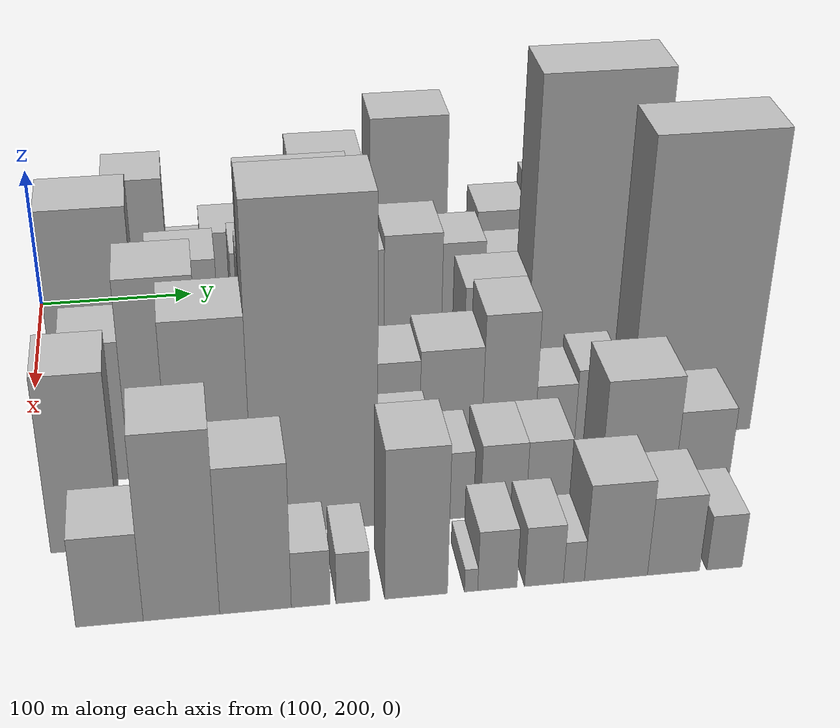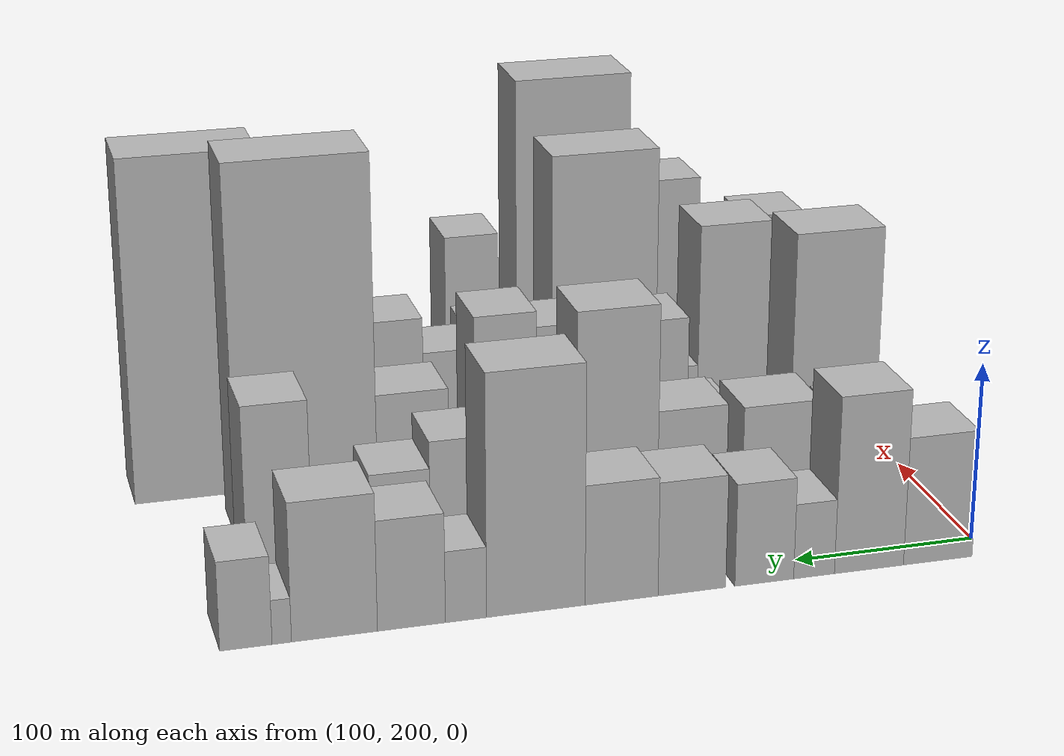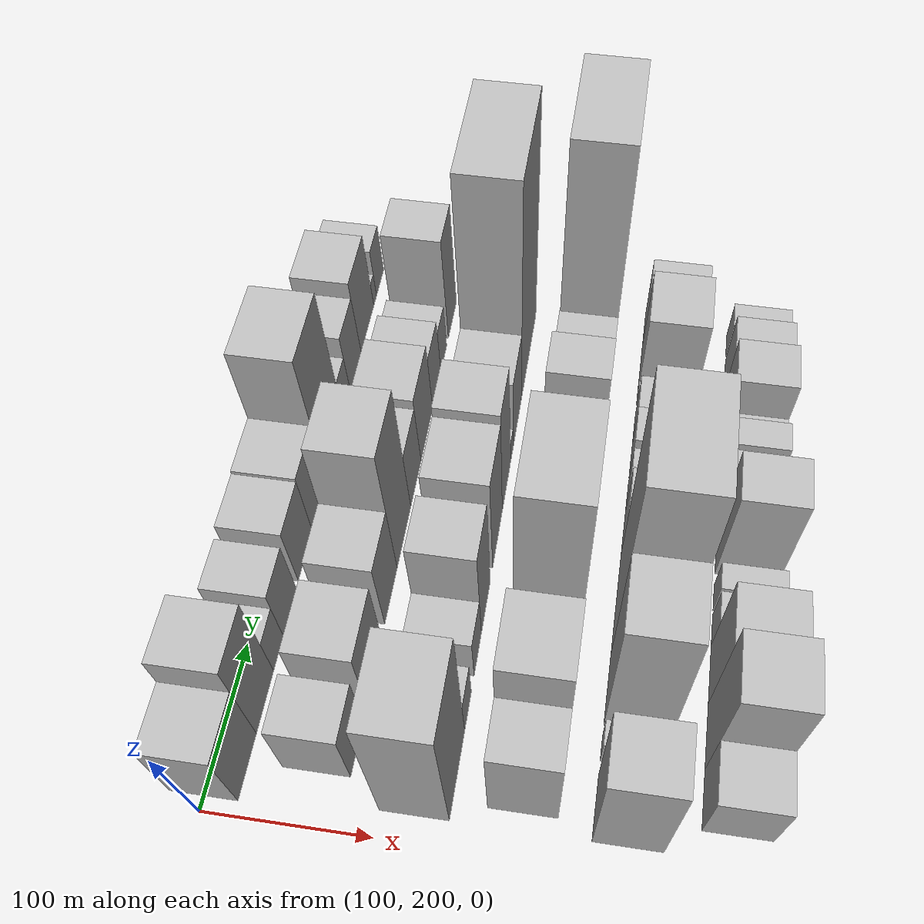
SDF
<sdf version="1.6">
 <world name="default">
  <model name="building_32">
   <static>1</static>
   <pose>100.0000 228.1606 0 0.000000 0.000000 0.000000</pose>
   <link name="link">
    <pose>0 0 36.00 0 0 0</pose>
    <collision name="collision"><geometry><box><size>40.0000 38.7418 72.0000</size></box></geometry></collision>
    <visual name="visual">
     <cast_shadows>0</cast_shadows>
     <geometry><box><size>40.0000 38.7418 72.0000</size></box></geometry>
     <material>
      <script>
       <uri>model://HANNAS_wall/materials/scripts</uri>
       <uri>model://HANNAS_wall/materials/textures</uri>
       <name>vrc/HANNAS_wall</name>
      </script>
     </material>
    </visual>
   </link>
  </model>
  <model name="building_33">
   <static>1</static>
   <pose>100.0000 266.7528 0 0.000000 0.000000 0.000000</pose>
   <link name="link">
    <pose>0 0 49.50 0 0 0</pose>
    <collision name="collision"><geometry><box><size>40.0000 38.4427 99.0000</size></box></geometry></collision>
    <visual name="visual">
     <cast_shadows>0</cast_shadows>
     <geometry><box><size>40.0000 38.4427 99.0000</size></box></geometry>
     <material>
      <script>
       <uri>model://HANNAS_wall/materials/scripts</uri>
       <uri>model://HANNAS_wall/materials/textures</uri>
       <name>vrc/HANNAS_wall</name>
      </script>
     </material>
    </visual>
   </link>
  </model>
  <model name="building_34">
   <static>1</static>
   <pose>100.0000 297.1990 0 0.000000 0.000000 0.000000</pose>
   <link name="link">
    <pose>0 0 21.00 0 0 0</pose>
    <collision name="collision"><geometry><box><size>40.0000 22.4496 42.0000</size></box></geometry></collision>
    <visual name="visual">
     <cast_shadows>0</cast_shadows>
     <geometry><box><size>40.0000 22.4496 42.0000</size></box></geometry>
     <material>
      <script>
       <uri>model://HANNAS_wall/materials/scripts</uri>
       <uri>model://HANNAS_wall/materials/textures</uri>
       <name>vrc/HANNAS_wall</name>
      </script>
     </material>
    </visual>
   </link>
  </model>
  <model name="building_35">
   <static>1</static>
   <pose>100.0000 324.4445 0 0.000000 0.000000 0.000000</pose>
   <link name="link">
    <pose>0 0 28.50 0 0 0</pose>
    <collision name="collision"><geometry><box><size>40.0000 32.0414 57.0000</size></box></geometry></collision>
    <visual name="visual">
     <cast_shadows>0</cast_shadows>
     <geometry><box><size>40.0000 32.0414 57.0000</size></box></geometry>
     <material>
      <script>
       <uri>model://HANNAS_wall/materials/scripts</uri>
       <uri>model://HANNAS_wall/materials/textures</uri>
       <name>vrc/HANNAS_wall</name>
      </script>
     </material>
    </visual>
   </link>
  </model>
  <model name="building_36">
   <static>1</static>
   <pose>100.0000 363.6247 0 0.000000 0.000000 0.000000</pose>
   <link name="link">
    <pose>0 0 31.50 0 0 0</pose>
    <collision name="collision"><geometry><box><size>40.0000 36.3191 63.0000</size></box></geometry></collision>
    <visual name="visual">
     <cast_shadows>0</cast_shadows>
     <geometry><box><size>40.0000 36.3191 63.0000</size></box></geometry>
     <material>
      <script>
       <uri>model://HANNAS_wall/materials/scripts</uri>
       <uri>model://HANNAS_wall/materials/textures</uri>
       <name>vrc/HANNAS_wall</name>
      </script>
     </material>
    </visual>
   </link>
  </model>
  <model name="building_37">
   <static>1</static>
   <pose>100.0000 401.1003 0 0.000000 0.000000 0.000000</pose>
   <link name="link">
    <pose>0 0 33.00 0 0 0</pose>
    <collision name="collision"><geometry><box><size>40.0000 38.6320 66.0000</size></box></geometry></collision>
    <visual name="visual">
     <cast_shadows>0</cast_shadows>
     <geometry><box><size>40.0000 38.6320 66.0000</size></box></geometry>
     <material>
      <script>
       <uri>model://HANNAS_wall/materials/scripts</uri>
       <uri>model://HANNAS_wall/materials/textures</uri>
       <name>vrc/HANNAS_wall</name>
      </script>
     </material>
    </visual>
   </link>
  </model>
  <model name="building_38">
   <static>1</static>
   <pose>100.0000 446.0421 0 0.000000 0.000000 0.000000</pose>
   <link name="link">
    <pose>0 0 66.00 0 0 0</pose>
    <collision name="collision"><geometry><box><size>40.0000 51.2516 132.0000</size></box></geometry></collision>
    <visual name="visual">
     <cast_shadows>0</cast_shadows>
     <geometry><box><size>40.0000 51.2516 132.0000</size></box></geometry>
     <material>
      <script>
       <uri>model://HANNAS_wall/materials/scripts</uri>
       <uri>model://HANNAS_wall/materials/textures</uri>
       <name>vrc/HANNAS_wall</name>
      </script>
     </material>
    </visual>
   </link>
  </model>
  <model name="building_39">
   <static>1</static>
   <pose>100.0000 482.2217 0 0.000000 0.000000 0.000000</pose>
   <link name="link">
    <pose>0 0 19.50 0 0 0</pose>
    <collision name="collision"><geometry><box><size>40.0000 21.1074 39.0000</size></box></geometry></collision>
    <visual name="visual">
     <cast_shadows>0</cast_shadows>
     <geometry><box><size>40.0000 21.1074 39.0000</size></box></geometry>
     <material>
      <script>
       <uri>model://HANNAS_wall/materials/scripts</uri>
       <uri>model://HANNAS_wall/materials/textures</uri>
       <name>vrc/HANNAS_wall</name>
      </script>
     </material>
    </visual>
   </link>
  </model>
  <model name="building_40">
   <static>1</static>
   <pose>100.0000 510.0241 0 0.000000 0.000000 0.000000</pose>
   <link name="link">
    <pose>0 0 30.00 0 0 0</pose>
    <collision name="collision"><geometry><box><size>40.0000 34.4973 60.0000</size></box></geometry></collision>
    <visual name="visual">
     <cast_shadows>0</cast_shadows>
     <geometry><box><size>40.0000 34.4973 60.0000</size></box></geometry>
     <material>
      <script>
       <uri>model://HANNAS_wall/materials/scripts</uri>
       <uri>model://HANNAS_wall/materials/textures</uri>
       <name>vrc/HANNAS_wall</name>
      </script>
     </material>
    </visual>
   </link>
  </model>
  <model name="building_41">
   <static>1</static>
   <pose>100.0000 548.7905 0 0.000000 0.000000 0.000000</pose>
   <link name="link">
    <pose>0 0 37.50 0 0 0</pose>
    <collision name="collision"><geometry><box><size>40.0000 43.0357 75.0000</size></box></geometry></collision>
    <visual name="visual">
     <cast_shadows>0</cast_shadows>
     <geometry><box><size>40.0000 43.0357 75.0000</size></box></geometry>
     <material>
      <script>
       <uri>model://HANNAS_wall/materials/scripts</uri>
       <uri>model://HANNAS_wall/materials/textures</uri>
       <name>vrc/HANNAS_wall</name>
      </script>
     </material>
    </visual>
   </link>
  </model>
  <model name="building_42">
   <static>1</static>
   <pose>100.0000 575.1133 0 0.000000 0.000000 0.000000</pose>
   <link name="link">
    <pose>0 0 12.00 0 0 0</pose>
    <collision name="collision"><geometry><box><size>40.0000 9.6099 24.0000</size></box></geometry></collision>
    <visual name="visual">
     <cast_shadows>0</cast_shadows>
     <geometry><box><size>40.0000 9.6099 24.0000</size></box></geometry>
     <material>
      <script>
       <uri>model://HANNAS_wall/materials/scripts</uri>
       <uri>model://HANNAS_wall/materials/textures</uri>
       <name>vrc/HANNAS_wall</name>
      </script>
     </material>
    </visual>
   </link>
  </model>
  <model name="building_43">
   <static>1</static>
   <pose>100.0000 592.8032 0 0.000000 0.000000 0.000000</pose>
   <link name="link">
    <pose>0 0 24.00 0 0 0</pose>
    <collision name="collision"><geometry><box><size>40.0000 25.7698 48.0000</size></box></geometry></collision>
    <visual name="visual">
     <cast_shadows>0</cast_shadows>
     <geometry><box><size>40.0000 25.7698 48.0000</size></box></geometry>
     <material>
      <script>
       <uri>model://HANNAS_wall/materials/scripts</uri>
       <uri>model://HANNAS_wall/materials/textures</uri>
       <name>vrc/HANNAS_wall</name>
      </script>
     </material>
    </visual>
   </link>
  </model>
  <model name="building_90">
   <static>1</static>
   <pose>160.0000 247.3424 0 0.000000 0.000000 0.000000</pose>
   <link name="link">
    <pose>0 0 31.50 0 0 0</pose>
    <collision name="collision"><geometry><box><size>40.0000 32.9470 63.0000</size></box></geometry></collision>
    <visual name="visual">
     <cast_shadows>0</cast_shadows>
     <geometry><box><size>40.0000 32.9470 63.0000</size></box></geometry>
     <material>
      <script>
       <uri>model://HANNAS_wall/materials/scripts</uri>
       <uri>model://HANNAS_wall/materials/textures</uri>
       <name>vrc/HANNAS_wall</name>
      </script>
     </material>
    </visual>
   </link>
  </model>
  <model name="building_91">
   <static>1</static>
   <pose>160.0000 294.3921 0 0.000000 0.000000 0.000000</pose>
   <link name="link">
    <pose>0 0 36.00 0 0 0</pose>
    <collision name="collision"><geometry><box><size>40.0000 43.1524 72.0000</size></box></geometry></collision>
    <visual name="visual">
     <cast_shadows>0</cast_shadows>
     <geometry><box><size>40.0000 43.1524 72.0000</size></box></geometry>
     <material>
      <script>
       <uri>model://HANNAS_wall/materials/scripts</uri>
       <uri>model://HANNAS_wall/materials/textures</uri>
       <name>vrc/HANNAS_wall</name>
      </script>
     </material>
    </visual>
   </link>
  </model>
  <model name="building_92">
   <static>1</static>
   <pose>160.0000 344.1235 0 0.000000 0.000000 0.000000</pose>
   <link name="link">
    <pose>0 0 37.50 0 0 0</pose>
    <collision name="collision"><geometry><box><size>40.0000 38.3102 75.0000</size></box></geometry></collision>
    <visual name="visual">
     <cast_shadows>0</cast_shadows>
     <geometry><box><size>40.0000 38.3102 75.0000</size></box></geometry>
     <material>
      <script>
       <uri>model://HANNAS_wall/materials/scripts</uri>
       <uri>model://HANNAS_wall/materials/textures</uri>
       <name>vrc/HANNAS_wall</name>
      </script>
     </material>
    </visual>
   </link>
  </model>
  <model name="building_93">
   <static>1</static>
   <pose>160.0000 385.5869 0 0.000000 0.000000 0.000000</pose>
   <link name="link">
    <pose>0 0 67.50 0 0 0</pose>
    <collision name="collision"><geometry><box><size>40.0000 44.6167 135.0000</size></box></geometry></collision>
    <visual name="visual">
     <cast_shadows>0</cast_shadows>
     <geometry><box><size>40.0000 44.6167 135.0000</size></box></geometry>
     <material>
      <script>
       <uri>model://HANNAS_wall/materials/scripts</uri>
       <uri>model://HANNAS_wall/materials/textures</uri>
       <name>vrc/HANNAS_wall</name>
      </script>
     </material>
    </visual>
   </link>
  </model>
  <model name="building_94">
   <static>1</static>
   <pose>160.0000 425.6810 0 0.000000 0.000000 0.000000</pose>
   <link name="link">
    <pose>0 0 31.50 0 0 0</pose>
    <collision name="collision"><geometry><box><size>40.0000 35.5715 63.0000</size></box></geometry></collision>
    <visual name="visual">
     <cast_shadows>0</cast_shadows>
     <geometry><box><size>40.0000 35.5715 63.0000</size></box></geometry>
     <material>
      <script>
       <uri>model://HANNAS_wall/materials/scripts</uri>
       <uri>model://HANNAS_wall/materials/textures</uri>
       <name>vrc/HANNAS_wall</name>
      </script>
     </material>
    </visual>
   </link>
  </model>
  <model name="building_95">
   <static>1</static>
   <pose>160.0000 464.9590 0 0.000000 0.000000 0.000000</pose>
   <link name="link">
    <pose>0 0 36.00 0 0 0</pose>
    <collision name="collision"><geometry><box><size>40.0000 42.9844 72.0000</size></box></geometry></collision>
    <visual name="visual">
     <cast_shadows>0</cast_shadows>
     <geometry><box><size>40.0000 42.9844 72.0000</size></box></geometry>
     <material>
      <script>
       <uri>model://HANNAS_wall/materials/scripts</uri>
       <uri>model://HANNAS_wall/materials/textures</uri>
       <name>vrc/HANNAS_wall</name>
      </script>
     </material>
    </visual>
   </link>
  </model>
  <model name="building_96">
   <static>1</static>
   <pose>160.0000 502.2956 0 0.000000 0.000000 0.000000</pose>
   <link name="link">
    <pose>0 0 28.50 0 0 0</pose>
    <collision name="collision"><geometry><box><size>40.0000 31.6889 57.0000</size></box></geometry></collision>
    <visual name="visual">
     <cast_shadows>0</cast_shadows>
     <geometry><box><size>40.0000 31.6889 57.0000</size></box></geometry>
     <material>
      <script>
       <uri>model://HANNAS_wall/materials/scripts</uri>
       <uri>model://HANNAS_wall/materials/textures</uri>
       <name>vrc/HANNAS_wall</name>
      </script>
     </material>
    </visual>
   </link>
  </model>
  <model name="building_97">
   <static>1</static>
   <pose>160.0000 529.7750 0 0.000000 0.000000 0.000000</pose>
   <link name="link">
    <pose>0 0 22.50 0 0 0</pose>
    <collision name="collision"><geometry><box><size>40.0000 23.2698 45.0000</size></box></geometry></collision>
    <visual name="visual">
     <cast_shadows>0</cast_shadows>
     <geometry><box><size>40.0000 23.2698 45.0000</size></box></geometry>
     <material>
      <script>
       <uri>model://HANNAS_wall/materials/scripts</uri>
       <uri>model://HANNAS_wall/materials/textures</uri>
       <name>vrc/HANNAS_wall</name>
      </script>
     </material>
    </visual>
   </link>
  </model>
  <model name="building_98">
   <static>1</static>
   <pose>160.0000 565.3741 0 0.000000 0.000000 0.000000</pose>
   <link name="link">
    <pose>0 0 51.00 0 0 0</pose>
    <collision name="collision"><geometry><box><size>40.0000 33.9284 102.0000</size></box></geometry></collision>
    <visual name="visual">
     <cast_shadows>0</cast_shadows>
     <geometry><box><size>40.0000 33.9284 102.0000</size></box></geometry>
     <material>
      <script>
       <uri>model://HANNAS_wall/materials/scripts</uri>
       <uri>model://HANNAS_wall/materials/textures</uri>
       <name>vrc/HANNAS_wall</name>
      </script>
     </material>
    </visual>
   </link>
  </model>
  <model name="building_140">
   <static>1</static>
   <pose>220.0000 240.8151 0 0.000000 0.000000 0.000000</pose>
   <link name="link">
    <pose>0 0 72.00 0 0 0</pose>
    <collision name="collision"><geometry><box><size>40.0000 51.1774 144.0000</size></box></geometry></collision>
    <visual name="visual">
     <cast_shadows>0</cast_shadows>
     <geometry><box><size>40.0000 51.1774 144.0000</size></box></geometry>
     <material>
      <script>
       <uri>model://HANNAS_wall/materials/scripts</uri>
       <uri>model://HANNAS_wall/materials/textures</uri>
       <name>vrc/HANNAS_wall</name>
      </script>
     </material>
    </visual>
   </link>
  </model>
  <model name="building_141">
   <static>1</static>
   <pose>220.0000 278.2354 0 0.000000 0.000000 0.000000</pose>
   <link name="link">
    <pose>0 0 21.00 0 0 0</pose>
    <collision name="collision"><geometry><box><size>40.0000 23.6631 42.0000</size></box></geometry></collision>
    <visual name="visual">
     <cast_shadows>0</cast_shadows>
     <geometry><box><size>40.0000 23.6631 42.0000</size></box></geometry>
     <material>
      <script>
       <uri>model://HANNAS_wall/materials/scripts</uri>
       <uri>model://HANNAS_wall/materials/textures</uri>
       <name>vrc/HANNAS_wall</name>
      </script>
     </material>
    </visual>
   </link>
  </model>
  <model name="building_142">
   <static>1</static>
   <pose>220.0000 313.7065 0 0.000000 0.000000 0.000000</pose>
   <link name="link">
    <pose>0 0 24.00 0 0 0</pose>
    <collision name="collision"><geometry><box><size>40.0000 27.2791 48.0000</size></box></geometry></collision>
    <visual name="visual">
     <cast_shadows>0</cast_shadows>
     <geometry><box><size>40.0000 27.2791 48.0000</size></box></geometry>
     <material>
      <script>
       <uri>model://HANNAS_wall/materials/scripts</uri>
       <uri>model://HANNAS_wall/materials/textures</uri>
       <name>vrc/HANNAS_wall</name>
      </script>
     </material>
    </visual>
   </link>
  </model>
  <model name="building_143">
   <static>1</static>
   <pose>220.0000 344.7576 0 0.000000 0.000000 0.000000</pose>
   <link name="link">
    <pose>0 0 51.00 0 0 0</pose>
    <collision name="collision"><geometry><box><size>40.0000 34.8232 102.0000</size></box></geometry></collision>
    <visual name="visual">
     <cast_shadows>0</cast_shadows>
     <geometry><box><size>40.0000 34.8232 102.0000</size></box></geometry>
     <material>
      <script>
       <uri>model://HANNAS_wall/materials/scripts</uri>
       <uri>model://HANNAS_wall/materials/textures</uri>
       <name>vrc/HANNAS_wall</name>
      </script>
     </material>
    </visual>
   </link>
  </model>
  <model name="building_144">
   <static>1</static>
   <pose>220.0000 392.6449 0 0.000000 0.000000 0.000000</pose>
   <link name="link">
    <pose>0 0 52.50 0 0 0</pose>
    <collision name="collision"><geometry><box><size>40.0000 40.9514 105.0000</size></box></geometry></collision>
    <visual name="visual">
     <cast_shadows>0</cast_shadows>
     <geometry><box><size>40.0000 40.9514 105.0000</size></box></geometry>
     <material>
      <script>
       <uri>model://HANNAS_wall/materials/scripts</uri>
       <uri>model://HANNAS_wall/materials/textures</uri>
       <name>vrc/HANNAS_wall</name>
      </script>
     </material>
    </visual>
   </link>
  </model>
  <model name="building_145">
   <static>1</static>
   <pose>220.0000 430.4843 0 0.000000 0.000000 0.000000</pose>
   <link name="link">
    <pose>0 0 57.00 0 0 0</pose>
    <collision name="collision"><geometry><box><size>40.0000 34.7274 114.0000</size></box></geometry></collision>
    <visual name="visual">
     <cast_shadows>0</cast_shadows>
     <geometry><box><size>40.0000 34.7274 114.0000</size></box></geometry>
     <material>
      <script>
       <uri>model://HANNAS_wall/materials/scripts</uri>
       <uri>model://HANNAS_wall/materials/textures</uri>
       <name>vrc/HANNAS_wall</name>
      </script>
     </material>
    </visual>
   </link>
  </model>
  <model name="building_146">
   <static>1</static>
   <pose>220.0000 456.5366 0 0.000000 0.000000 0.000000</pose>
   <link name="link">
    <pose>0 0 12.00 0 0 0</pose>
    <collision name="collision"><geometry><box><size>40.0000 11.3773 24.0000</size></box></geometry></collision>
    <visual name="visual">
     <cast_shadows>0</cast_shadows>
     <geometry><box><size>40.0000 11.3773 24.0000</size></box></geometry>
     <material>
      <script>
       <uri>model://HANNAS_wall/materials/scripts</uri>
       <uri>model://HANNAS_wall/materials/textures</uri>
       <name>vrc/HANNAS_wall</name>
      </script>
     </material>
    </visual>
   </link>
  </model>
  <model name="building_147">
   <static>1</static>
   <pose>220.0000 481.9867 0 0.000000 0.000000 0.000000</pose>
   <link name="link">
    <pose>0 0 37.50 0 0 0</pose>
    <collision name="collision"><geometry><box><size>40.0000 39.5229 75.0000</size></box></geometry></collision>
    <visual name="visual">
     <cast_shadows>0</cast_shadows>
     <geometry><box><size>40.0000 39.5229 75.0000</size></box></geometry>
     <material>
      <script>
       <uri>model://HANNAS_wall/materials/scripts</uri>
       <uri>model://HANNAS_wall/materials/textures</uri>
       <name>vrc/HANNAS_wall</name>
      </script>
     </material>
    </visual>
   </link>
  </model>
  <model name="building_148">
   <static>1</static>
   <pose>220.0000 540.1271 0 0.000000 0.000000 0.000000</pose>
   <link name="link">
    <pose>0 0 105.00 0 0 0</pose>
    <collision name="collision"><geometry><box><size>40.0000 76.7579 210.0000</size></box></geometry></collision>
    <visual name="visual">
     <cast_shadows>0</cast_shadows>
     <geometry><box><size>40.0000 76.7579 210.0000</size></box></geometry>
     <material>
      <script>
       <uri>model://HANNAS_wall/materials/scripts</uri>
       <uri>model://HANNAS_wall/materials/textures</uri>
       <name>vrc/HANNAS_wall</name>
      </script>
     </material>
    </visual>
   </link>
  </model>
  <model name="building_193">
   <static>1</static>
   <pose>280.0000 241.6356 0 0.000000 0.000000 0.000000</pose>
   <link name="link">
    <pose>0 0 46.50 0 0 0</pose>
    <collision name="collision"><geometry><box><size>40.0000 32.7218 93.0000</size></box></geometry></collision>
    <visual name="visual">
     <cast_shadows>0</cast_shadows>
     <geometry><box><size>40.0000 32.7218 93.0000</size></box></geometry>
     <material>
      <script>
       <uri>model://HANNAS_wall/materials/scripts</uri>
       <uri>model://HANNAS_wall/materials/textures</uri>
       <name>vrc/HANNAS_wall</name>
      </script>
     </material>
    </visual>
   </link>
  </model>
  <model name="building_194">
   <static>1</static>
   <pose>280.0000 279.4947 0 0.000000 0.000000 0.000000</pose>
   <link name="link">
    <pose>0 0 66.00 0 0 0</pose>
    <collision name="collision"><geometry><box><size>40.0000 42.9963 132.0000</size></box></geometry></collision>
    <visual name="visual">
     <cast_shadows>0</cast_shadows>
     <geometry><box><size>40.0000 42.9963 132.0000</size></box></geometry>
     <material>
      <script>
       <uri>model://HANNAS_wall/materials/scripts</uri>
       <uri>model://HANNAS_wall/materials/textures</uri>
       <name>vrc/HANNAS_wall</name>
      </script>
     </material>
    </visual>
   </link>
  </model>
  <model name="building_195">
   <static>1</static>
   <pose>280.0000 313.7377 0 0.000000 0.000000 0.000000</pose>
   <link name="link">
    <pose>0 0 24.00 0 0 0</pose>
    <collision name="collision"><geometry><box><size>40.0000 25.4897 48.0000</size></box></geometry></collision>
    <visual name="visual">
     <cast_shadows>0</cast_shadows>
     <geometry><box><size>40.0000 25.4897 48.0000</size></box></geometry>
     <material>
      <script>
       <uri>model://HANNAS_wall/materials/scripts</uri>
       <uri>model://HANNAS_wall/materials/textures</uri>
       <name>vrc/HANNAS_wall</name>
      </script>
     </material>
    </visual>
   </link>
  </model>
  <model name="building_196">
   <static>1</static>
   <pose>280.0000 357.2490 0 0.000000 0.000000 0.000000</pose>
   <link name="link">
    <pose>0 0 90.00 0 0 0</pose>
    <collision name="collision"><geometry><box><size>40.0000 61.5329 180.0000</size></box></geometry></collision>
    <visual name="visual">
     <cast_shadows>0</cast_shadows>
     <geometry><box><size>40.0000 61.5329 180.0000</size></box></geometry>
     <material>
      <script>
       <uri>model://HANNAS_wall/materials/scripts</uri>
       <uri>model://HANNAS_wall/materials/textures</uri>
       <name>vrc/HANNAS_wall</name>
      </script>
     </material>
    </visual>
   </link>
  </model>
  <model name="building_197">
   <static>1</static>
   <pose>280.0000 406.8932 0 0.000000 0.000000 0.000000</pose>
   <link name="link">
    <pose>0 0 33.00 0 0 0</pose>
    <collision name="collision"><geometry><box><size>40.0000 37.7554 66.0000</size></box></geometry></collision>
    <visual name="visual">
     <cast_shadows>0</cast_shadows>
     <geometry><box><size>40.0000 37.7554 66.0000</size></box></geometry>
     <material>
      <script>
       <uri>model://HANNAS_wall/materials/scripts</uri>
       <uri>model://HANNAS_wall/materials/textures</uri>
       <name>vrc/HANNAS_wall</name>
      </script>
     </material>
    </visual>
   </link>
  </model>
  <model name="building_198">
   <static>1</static>
   <pose>280.0000 444.1044 0 0.000000 0.000000 0.000000</pose>
   <link name="link">
    <pose>0 0 36.00 0 0 0</pose>
    <collision name="collision"><geometry><box><size>40.0000 36.6672 72.0000</size></box></geometry></collision>
    <visual name="visual">
     <cast_shadows>0</cast_shadows>
     <geometry><box><size>40.0000 36.6672 72.0000</size></box></geometry>
     <material>
      <script>
       <uri>model://HANNAS_wall/materials/scripts</uri>
       <uri>model://HANNAS_wall/materials/textures</uri>
       <name>vrc/HANNAS_wall</name>
      </script>
     </material>
    </visual>
   </link>
  </model>
  <model name="building_199">
   <static>1</static>
   <pose>280.0000 478.2560 0 0.000000 0.000000 0.000000</pose>
   <link name="link">
    <pose>0 0 46.50 0 0 0</pose>
    <collision name="collision"><geometry><box><size>40.0000 31.6361 93.0000</size></box></geometry></collision>
    <visual name="visual">
     <cast_shadows>0</cast_shadows>
     <geometry><box><size>40.0000 31.6361 93.0000</size></box></geometry>
     <material>
      <script>
       <uri>model://HANNAS_wall/materials/scripts</uri>
       <uri>model://HANNAS_wall/materials/textures</uri>
       <name>vrc/HANNAS_wall</name>
      </script>
     </material>
    </visual>
   </link>
  </model>
  <model name="building_200">
   <static>1</static>
   <pose>280.0000 506.1931 0 0.000000 0.000000 0.000000</pose>
   <link name="link">
    <pose>0 0 21.00 0 0 0</pose>
    <collision name="collision"><geometry><box><size>40.0000 24.2379 42.0000</size></box></geometry></collision>
    <visual name="visual">
     <cast_shadows>0</cast_shadows>
     <geometry><box><size>40.0000 24.2379 42.0000</size></box></geometry>
     <material>
      <script>
       <uri>model://HANNAS_wall/materials/scripts</uri>
       <uri>model://HANNAS_wall/materials/textures</uri>
       <name>vrc/HANNAS_wall</name>
      </script>
     </material>
    </visual>
   </link>
  </model>
  <model name="building_201">
   <static>1</static>
   <pose>280.0000 531.4279 0 0.000000 0.000000 0.000000</pose>
   <link name="link">
    <pose>0 0 25.50 0 0 0</pose>
    <collision name="collision"><geometry><box><size>40.0000 26.2318 51.0000</size></box></geometry></collision>
    <visual name="visual">
     <cast_shadows>0</cast_shadows>
     <geometry><box><size>40.0000 26.2318 51.0000</size></box></geometry>
     <material>
      <script>
       <uri>model://HANNAS_wall/materials/scripts</uri>
       <uri>model://HANNAS_wall/materials/textures</uri>
       <name>vrc/HANNAS_wall</name>
      </script>
     </material>
    </visual>
   </link>
  </model>
  <model name="building_202">
   <static>1</static>
   <pose>280.0000 588.0020 0 0.000000 0.000000 0.000000</pose>
   <link name="link">
    <pose>0 0 99.00 0 0 0</pose>
    <collision name="collision"><geometry><box><size>40.0000 74.9164 198.0000</size></box></geometry></collision>
    <visual name="visual">
     <cast_shadows>0</cast_shadows>
     <geometry><box><size>40.0000 74.9164 198.0000</size></box></geometry>
     <material>
      <script>
       <uri>model://HANNAS_wall/materials/scripts</uri>
       <uri>model://HANNAS_wall/materials/textures</uri>
       <name>vrc/HANNAS_wall</name>
      </script>
     </material>
    </visual>
   </link>
  </model>
  <model name="building_245">
   <static>1</static>
   <pose>340.0000 234.0053 0 0.000000 0.000000 0.000000</pose>
   <link name="link">
    <pose>0 0 57.00 0 0 0</pose>
    <collision name="collision"><geometry><box><size>40.0000 36.8858 114.0000</size></box></geometry></collision>
    <visual name="visual">
     <cast_shadows>0</cast_shadows>
     <geometry><box><size>40.0000 36.8858 114.0000</size></box></geometry>
     <material>
      <script>
       <uri>model://HANNAS_wall/materials/scripts</uri>
       <uri>model://HANNAS_wall/materials/textures</uri>
       <name>vrc/HANNAS_wall</name>
      </script>
     </material>
    </visual>
   </link>
  </model>
  <model name="building_246">
   <static>1</static>
   <pose>340.0000 267.9760 0 0.000000 0.000000 0.000000</pose>
   <link name="link">
    <pose>0 0 15.00 0 0 0</pose>
    <collision name="collision"><geometry><box><size>40.0000 15.0556 30.0000</size></box></geometry></collision>
    <visual name="visual">
     <cast_shadows>0</cast_shadows>
     <geometry><box><size>40.0000 15.0556 30.0000</size></box></geometry>
     <material>
      <script>
       <uri>model://HANNAS_wall/materials/scripts</uri>
       <uri>model://HANNAS_wall/materials/textures</uri>
       <name>vrc/HANNAS_wall</name>
      </script>
     </material>
    </visual>
   </link>
  </model>
  <model name="building_247">
   <static>1</static>
   <pose>340.0000 303.1910 0 0.000000 0.000000 0.000000</pose>
   <link name="link">
    <pose>0 0 70.50 0 0 0</pose>
    <collision name="collision"><geometry><box><size>40.0000 43.3744 141.0000</size></box></geometry></collision>
    <visual name="visual">
     <cast_shadows>0</cast_shadows>
     <geometry><box><size>40.0000 43.3744 141.0000</size></box></geometry>
     <material>
      <script>
       <uri>model://HANNAS_wall/materials/scripts</uri>
       <uri>model://HANNAS_wall/materials/textures</uri>
       <name>vrc/HANNAS_wall</name>
      </script>
     </material>
    </visual>
   </link>
  </model>
  <model name="building_248">
   <static>1</static>
   <pose>340.0000 358.9578 0 0.000000 0.000000 0.000000</pose>
   <link name="link">
    <pose>0 0 103.50 0 0 0</pose>
    <collision name="collision"><geometry><box><size>40.0000 68.1591 207.0000</size></box></geometry></collision>
    <visual name="visual">
     <cast_shadows>0</cast_shadows>
     <geometry><box><size>40.0000 68.1591 207.0000</size></box></geometry>
     <material>
      <script>
       <uri>model://HANNAS_wall/materials/scripts</uri>
       <uri>model://HANNAS_wall/materials/textures</uri>
       <name>vrc/HANNAS_wall</name>
      </script>
     </material>
    </visual>
   </link>
  </model>
  <model name="building_249">
   <static>1</static>
   <pose>340.0000 408.1441 0 0.000000 0.000000 0.000000</pose>
   <link name="link">
    <pose>0 0 30.00 0 0 0</pose>
    <collision name="collision"><geometry><box><size>40.0000 30.2135 60.0000</size></box></geometry></collision>
    <visual name="visual">
     <cast_shadows>0</cast_shadows>
     <geometry><box><size>40.0000 30.2135 60.0000</size></box></geometry>
     <material>
      <script>
       <uri>model://HANNAS_wall/materials/scripts</uri>
       <uri>model://HANNAS_wall/materials/textures</uri>
       <name>vrc/HANNAS_wall</name>
      </script>
     </material>
    </visual>
   </link>
  </model>
  <model name="building_250">
   <static>1</static>
   <pose>340.0000 434.8686 0 0.000000 0.000000 0.000000</pose>
   <link name="link">
    <pose>0 0 22.50 0 0 0</pose>
    <collision name="collision"><geometry><box><size>40.0000 23.2354 45.0000</size></box></geometry></collision>
    <visual name="visual">
     <cast_shadows>0</cast_shadows>
     <geometry><box><size>40.0000 23.2354 45.0000</size></box></geometry>
     <material>
      <script>
       <uri>model://HANNAS_wall/materials/scripts</uri>
       <uri>model://HANNAS_wall/materials/textures</uri>
       <name>vrc/HANNAS_wall</name>
      </script>
     </material>
    </visual>
   </link>
  </model>
  <model name="building_251">
   <static>1</static>
   <pose>340.0000 463.3263 0 0.000000 0.000000 0.000000</pose>
   <link name="link">
    <pose>0 0 24.00 0 0 0</pose>
    <collision name="collision"><geometry><box><size>40.0000 25.6801 48.0000</size></box></geometry></collision>
    <visual name="visual">
     <cast_shadows>0</cast_shadows>
     <geometry><box><size>40.0000 25.6801 48.0000</size></box></geometry>
     <material>
      <script>
       <uri>model://HANNAS_wall/materials/scripts</uri>
       <uri>model://HANNAS_wall/materials/textures</uri>
       <name>vrc/HANNAS_wall</name>
      </script>
     </material>
    </visual>
   </link>
  </model>
  <model name="building_252">
   <static>1</static>
   <pose>340.0000 488.5494 0 0.000000 0.000000 0.000000</pose>
   <link name="link">
    <pose>0 0 24.00 0 0 0</pose>
    <collision name="collision"><geometry><box><size>40.0000 24.7661 48.0000</size></box></geometry></collision>
    <visual name="visual">
     <cast_shadows>0</cast_shadows>
     <geometry><box><size>40.0000 24.7661 48.0000</size></box></geometry>
     <material>
      <script>
       <uri>model://HANNAS_wall/materials/scripts</uri>
       <uri>model://HANNAS_wall/materials/textures</uri>
       <name>vrc/HANNAS_wall</name>
      </script>
     </material>
    </visual>
   </link>
  </model>
  <model name="building_253">
   <static>1</static>
   <pose>340.0000 513.8174 0 0.000000 0.000000 0.000000</pose>
   <link name="link">
    <pose>0 0 9.00 0 0 0</pose>
    <collision name="collision"><geometry><box><size>40.0000 7.7698 18.0000</size></box></geometry></collision>
    <visual name="visual">
     <cast_shadows>0</cast_shadows>
     <geometry><box><size>40.0000 7.7698 18.0000</size></box></geometry>
     <material>
      <script>
       <uri>model://HANNAS_wall/materials/scripts</uri>
       <uri>model://HANNAS_wall/materials/textures</uri>
       <name>vrc/HANNAS_wall</name>
      </script>
     </material>
    </visual>
   </link>
  </model>
  <model name="building_254">
   <static>1</static>
   <pose>340.0000 538.9544 0 0.000000 0.000000 0.000000</pose>
   <link name="link">
    <pose>0 0 42.00 0 0 0</pose>
    <collision name="collision"><geometry><box><size>40.0000 42.5041 84.0000</size></box></geometry></collision>
    <visual name="visual">
     <cast_shadows>0</cast_shadows>
     <geometry><box><size>40.0000 42.5041 84.0000</size></box></geometry>
     <material>
      <script>
       <uri>model://HANNAS_wall/materials/scripts</uri>
       <uri>model://HANNAS_wall/materials/textures</uri>
       <name>vrc/HANNAS_wall</name>
      </script>
     </material>
    </visual>
   </link>
  </model>
  <model name="building_255">
   <static>1</static>
   <pose>340.0000 575.9513 0 0.000000 0.000000 0.000000</pose>
   <link name="link">
    <pose>0 0 30.00 0 0 0</pose>
    <collision name="collision"><geometry><box><size>40.0000 31.4898 60.0000</size></box></geometry></collision>
    <visual name="visual">
     <cast_shadows>0</cast_shadows>
     <geometry><box><size>40.0000 31.4898 60.0000</size></box></geometry>
     <material>
      <script>
       <uri>model://HANNAS_wall/materials/scripts</uri>
       <uri>model://HANNAS_wall/materials/textures</uri>
       <name>vrc/HANNAS_wall</name>
      </script>
     </material>
    </visual>
   </link>
  </model>
  <model name="building_298">
   <static>1</static>
   <pose>400.0000 247.1659 0 0.000000 0.000000 0.000000</pose>
   <link name="link">
    <pose>0 0 28.50 0 0 0</pose>
    <collision name="collision"><geometry><box><size>40.0000 34.0579 57.0000</size></box></geometry></collision>
    <visual name="visual">
     <cast_shadows>0</cast_shadows>
     <geometry><box><size>40.0000 34.0579 57.0000</size></box></geometry>
     <material>
      <script>
       <uri>model://HANNAS_wall/materials/scripts</uri>
       <uri>model://HANNAS_wall/materials/textures</uri>
       <name>vrc/HANNAS_wall</name>
      </script>
     </material>
    </visual>
   </link>
  </model>
  <model name="building_299">
   <static>1</static>
   <pose>400.0000 283.6743 0 0.000000 0.000000 0.000000</pose>
   <link name="link">
    <pose>0 0 58.50 0 0 0</pose>
    <collision name="collision"><geometry><box><size>40.0000 38.9589 117.0000</size></box></geometry></collision>
    <visual name="visual">
     <cast_shadows>0</cast_shadows>
     <geometry><box><size>40.0000 38.9589 117.0000</size></box></geometry>
     <material>
      <script>
       <uri>model://HANNAS_wall/materials/scripts</uri>
       <uri>model://HANNAS_wall/materials/textures</uri>
       <name>vrc/HANNAS_wall</name>
      </script>
     </material>
    </visual>
   </link>
  </model>
  <model name="building_300">
   <static>1</static>
   <pose>400.0000 321.5773 0 0.000000 0.000000 0.000000</pose>
   <link name="link">
    <pose>0 0 46.50 0 0 0</pose>
    <collision name="collision"><geometry><box><size>40.0000 36.8471 93.0000</size></box></geometry></collision>
    <visual name="visual">
     <cast_shadows>0</cast_shadows>
     <geometry><box><size>40.0000 36.8471 93.0000</size></box></geometry>
     <material>
      <script>
       <uri>model://HANNAS_wall/materials/scripts</uri>
       <uri>model://HANNAS_wall/materials/textures</uri>
       <name>vrc/HANNAS_wall</name>
      </script>
     </material>
    </visual>
   </link>
  </model>
  <model name="building_301">
   <static>1</static>
   <pose>400.0000 350.0999 0 0.000000 0.000000 0.000000</pose>
   <link name="link">
    <pose>0 0 18.00 0 0 0</pose>
    <collision name="collision"><geometry><box><size>40.0000 20.1980 36.0000</size></box></geometry></collision>
    <visual name="visual">
     <cast_shadows>0</cast_shadows>
     <geometry><box><size>40.0000 20.1980 36.0000</size></box></geometry>
     <material>
      <script>
       <uri>model://HANNAS_wall/materials/scripts</uri>
       <uri>model://HANNAS_wall/materials/textures</uri>
       <name>vrc/HANNAS_wall</name>
      </script>
     </material>
    </visual>
   </link>
  </model>
  <model name="building_302">
   <static>1</static>
   <pose>400.0000 371.9151 0 0.000000 0.000000 0.000000</pose>
   <link name="link">
    <pose>0 0 16.50 0 0 0</pose>
    <collision name="collision"><geometry><box><size>40.0000 17.4325 33.0000</size></box></geometry></collision>
    <visual name="visual">
     <cast_shadows>0</cast_shadows>
     <geometry><box><size>40.0000 17.4325 33.0000</size></box></geometry>
     <material>
      <script>
       <uri>model://HANNAS_wall/materials/scripts</uri>
       <uri>model://HANNAS_wall/materials/textures</uri>
       <name>vrc/HANNAS_wall</name>
      </script>
     </material>
    </visual>
   </link>
  </model>
  <model name="building_303">
   <static>1</static>
   <pose>400.0000 405.1179 0 0.000000 0.000000 0.000000</pose>
   <link name="link">
    <pose>0 0 48.00 0 0 0</pose>
    <collision name="collision"><geometry><box><size>40.0000 32.9729 96.0000</size></box></geometry></collision>
    <visual name="visual">
     <cast_shadows>0</cast_shadows>
     <geometry><box><size>40.0000 32.9729 96.0000</size></box></geometry>
     <material>
      <script>
       <uri>model://HANNAS_wall/materials/scripts</uri>
       <uri>model://HANNAS_wall/materials/textures</uri>
       <name>vrc/HANNAS_wall</name>
      </script>
     </material>
    </visual>
   </link>
  </model>
  <model name="building_304">
   <static>1</static>
   <pose>400.0000 434.1037 0 0.000000 0.000000 0.000000</pose>
   <link name="link">
    <pose>0 0 7.50 0 0 0</pose>
    <collision name="collision"><geometry><box><size>40.0000 6.9988 15.0000</size></box></geometry></collision>
    <visual name="visual">
     <cast_shadows>0</cast_shadows>
     <geometry><box><size>40.0000 6.9988 15.0000</size></box></geometry>
     <material>
      <script>
       <uri>model://HANNAS_wall/materials/scripts</uri>
       <uri>model://HANNAS_wall/materials/textures</uri>
       <name>vrc/HANNAS_wall</name>
      </script>
     </material>
    </visual>
   </link>
  </model>
  <model name="building_305">
   <static>1</static>
   <pose>400.0000 448.0857 0 0.000000 0.000000 0.000000</pose>
   <link name="link">
    <pose>0 0 19.50 0 0 0</pose>
    <collision name="collision"><geometry><box><size>40.0000 20.9652 39.0000</size></box></geometry></collision>
    <visual name="visual">
     <cast_shadows>0</cast_shadows>
     <geometry><box><size>40.0000 20.9652 39.0000</size></box></geometry>
     <material>
      <script>
       <uri>model://HANNAS_wall/materials/scripts</uri>
       <uri>model://HANNAS_wall/materials/textures</uri>
       <name>vrc/HANNAS_wall</name>
      </script>
     </material>
    </visual>
   </link>
  </model>
  <model name="building_306">
   <static>1</static>
   <pose>400.0000 472.9755 0 0.000000 0.000000 0.000000</pose>
   <link name="link">
    <pose>0 0 19.50 0 0 0</pose>
    <collision name="collision"><geometry><box><size>40.0000 20.8145 39.0000</size></box></geometry></collision>
    <visual name="visual">
     <cast_shadows>0</cast_shadows>
     <geometry><box><size>40.0000 20.8145 39.0000</size></box></geometry>
     <material>
      <script>
       <uri>model://HANNAS_wall/materials/scripts</uri>
       <uri>model://HANNAS_wall/materials/textures</uri>
       <name>vrc/HANNAS_wall</name>
      </script>
     </material>
    </visual>
   </link>
  </model>
  <model name="building_307">
   <static>1</static>
   <pose>400.0000 489.0116 0 0.000000 0.000000 0.000000</pose>
   <link name="link">
    <pose>0 0 13.50 0 0 0</pose>
    <collision name="collision"><geometry><box><size>40.0000 11.2578 27.0000</size></box></geometry></collision>
    <visual name="visual">
     <cast_shadows>0</cast_shadows>
     <geometry><box><size>40.0000 11.2578 27.0000</size></box></geometry>
     <material>
      <script>
       <uri>model://HANNAS_wall/materials/scripts</uri>
       <uri>model://HANNAS_wall/materials/textures</uri>
       <name>vrc/HANNAS_wall</name>
      </script>
     </material>
    </visual>
   </link>
  </model>
  <model name="building_308">
   <static>1</static>
   <pose>400.0000 511.7206 0 0.000000 0.000000 0.000000</pose>
   <link name="link">
    <pose>0 0 31.50 0 0 0</pose>
    <collision name="collision"><geometry><box><size>40.0000 34.1601 63.0000</size></box></geometry></collision>
    <visual name="visual">
     <cast_shadows>0</cast_shadows>
     <geometry><box><size>40.0000 34.1601 63.0000</size></box></geometry>
     <material>
      <script>
       <uri>model://HANNAS_wall/materials/scripts</uri>
       <uri>model://HANNAS_wall/materials/textures</uri>
       <name>vrc/HANNAS_wall</name>
      </script>
     </material>
    </visual>
   </link>
  </model>
  <model name="building_309">
   <static>1</static>
   <pose>400.0000 543.0184 0 0.000000 0.000000 0.000000</pose>
   <link name="link">
    <pose>0 0 25.50 0 0 0</pose>
    <collision name="collision"><geometry><box><size>40.0000 28.4356 51.0000</size></box></geometry></collision>
    <visual name="visual">
     <cast_shadows>0</cast_shadows>
     <geometry><box><size>40.0000 28.4356 51.0000</size></box></geometry>
     <material>
      <script>
       <uri>model://HANNAS_wall/materials/scripts</uri>
       <uri>model://HANNAS_wall/materials/textures</uri>
       <name>vrc/HANNAS_wall</name>
      </script>
     </material>
    </visual>
   </link>
  </model>
  <model name="building_310">
   <static>1</static>
   <pose>400.0000 570.9062 0 0.000000 0.000000 0.000000</pose>
   <link name="link">
    <pose>0 0 18.00 0 0 0</pose>
    <collision name="collision"><geometry><box><size>40.0000 19.3400 36.0000</size></box></geometry></collision>
    <visual name="visual">
     <cast_shadows>0</cast_shadows>
     <geometry><box><size>40.0000 19.3400 36.0000</size></box></geometry>
     <material>
      <script>
       <uri>model://HANNAS_wall/materials/scripts</uri>
       <uri>model://HANNAS_wall/materials/textures</uri>
       <name>vrc/HANNAS_wall</name>
      </script>
     </material>
    </visual>
   </link>
  </model>
 </world>
</sdf>
